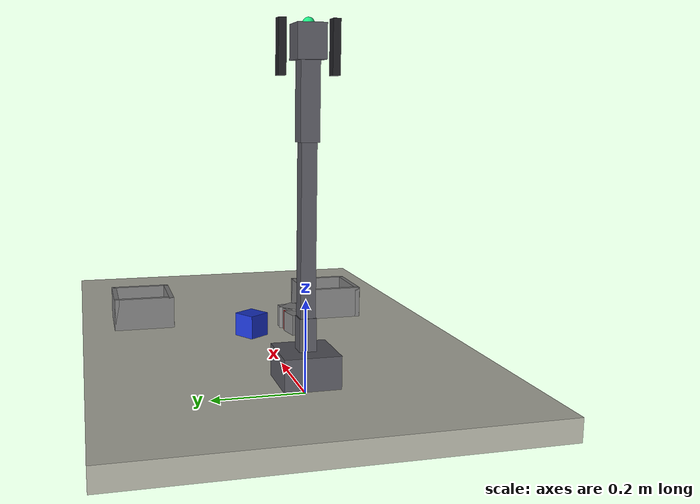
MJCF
<mujoco model="Autonomous reference tabletop arm scene_task_req_a_tabletop_robot_arm_that_sorts_red_and_blue_blo_edge_case_002">
  <compiler angle="radian" coordinate="local" />
  <option timestep="0.002" gravity="0 0 -9.81" />
  <!-- scene_set_id=scenes_task_req_a_tabletop_robot_arm_that_sorts_red_and_blue_blo_edge_case scene_id=scene_task_req_a_tabletop_robot_arm_that_sorts_red_and_blue_blo_edge_case_002 -->
  <default>
    <joint damping="0.8" armature="0.01" />
    <geom friction="1 0.1 0.01" />
  </default>
  <asset>
    <material name="mat_red" rgba="0.8 0.1 0.1 1" />
    <material name="mat_blue" rgba="0.1 0.2 0.8 1" />
    <material name="mat_gray" rgba="0.5 0.5 0.5 1" />
    <material name="mat_link" rgba="0.35 0.35 0.38 1" />
  </asset>
  <worldbody>
    <light name="key" pos="0 0 2" dir="0 0 -1" />
    <geom name="table" type="box" size="0.7 0.45 0.025" pos="0.4 0 0" rgba="0.7 0.7 0.65 1" />
    <body name="base_link" pos="0.0 0.0 0.025">
      <geom name="base_link_geom" type="box" size="0.06 0.06 0.035" pos="0 0 0.035" mass="0.45" material="mat_link" />
      <body name="upper_link" pos="0.0 0.0 0.07">
        <joint name="base_yaw" type="hinge" axis="0.0 0.0 1.0" pos="0 0 0" limited="true" range="-3.14 3.14" />
        <geom name="upper_link_geom" type="box" size="0.018 0.018 0.035" pos="0 0 0.035" mass="0.22" material="mat_link" />
        <body name="forearm_link" pos="0.0 0.0 0.07">
          <joint name="shoulder_pitch" type="hinge" axis="0.0 1.0 0.0" pos="0 0 0" limited="true" range="-1.57 1.57" />
          <geom name="forearm_link_geom" type="box" size="0.016 0.016 0.1785" pos="0 0 0.1785" mass="0.18" material="mat_link" />
          <body name="wrist_link" pos="0.0 0.0 0.357">
            <joint name="elbow_pitch" type="hinge" axis="0.0 1.0 0.0" pos="0 0 0" limited="true" range="-1.57 1.57" />
            <geom name="wrist_link_geom" type="box" size="0.02 0.02 0.08" pos="0 0 0.08" mass="0.035" material="mat_link" />
            <camera name="wrist_rgbd_camera" pos="0.03 0.0 0.04" xyaxes="0 -1 0 0 0 1" mode="fixed" user="0.0 0.0 0.0" />
            <body name="gripper_link" pos="0.0 0.0 0.16">
              <geom name="gripper_link_geom" type="box" size="0.03 0.03 0.035" pos="0 0 0.035" mass="0.04" material="mat_link" />
              <site name="ee_site" pos="0 0 0.07" size="0.012" rgba="0.1 0.9 0.5 1" />
              <site name="grasp_site" pos="0 0 0.015" size="0.01" rgba="1 0.7 0.1 1" />
              <body name="left_gripper_finger" pos="0 0.055 0.07">
                <joint name="left_gripper_slide" type="slide" axis="0 -1 0" limited="true" range="0 0.04" damping="2.0" />
                <geom name="left_gripper_pad" type="box" size="0.012 0.008 0.055" pos="0 0 -0.045" mass="0.025" rgba="0.12 0.12 0.14 1" friction="1.5 0.1 0.01" />
              </body>
              <body name="right_gripper_finger" pos="0 -0.055 0.07">
                <joint name="right_gripper_slide" type="slide" axis="0 1 0" limited="true" range="0 0.04" damping="2.0" />
                <geom name="right_gripper_pad" type="box" size="0.012 0.008 0.055" pos="0 0 -0.045" mass="0.025" rgba="0.12 0.12 0.14 1" friction="1.5 0.1 0.01" />
              </body>
            </body>
          </body>
        </body>
      </body>
    </body>
    <body name="obj_red_block" pos="0.3984 -0.085 0.0511" euler="0 0 -0.4213">
      <freejoint name="free_red_block" />
      <geom name="red_block" type="box" size="0.0251 0.0251 0.0251" mass="0.0405" friction="1.135 0.1 0.01" material="mat_red" />
    </body>
    <body name="obj_blue_block" pos="0.36 0.0372 0.0544" euler="0 0 0.5907">
      <freejoint name="free_blue_block" />
      <geom name="blue_block" type="box" size="0.0284 0.0284 0.0284" mass="0.0481" friction="0.917 0.1 0.01" material="mat_blue" />
    </body>
    <geom name="red_bin" type="box" size="0.07 0.07 0.004" pos="0.55 -0.2116 0.029" material="mat_gray" />
    <geom name="red_bin_wall_px" type="box" size="0.006 0.07600000000000001 0.04" pos="0.62 -0.2116 0.065" material="mat_gray" />
    <geom name="red_bin_wall_nx" type="box" size="0.006 0.07600000000000001 0.04" pos="0.48 -0.2116 0.065" material="mat_gray" />
    <geom name="red_bin_wall_py" type="box" size="0.07600000000000001 0.006 0.04" pos="0.55 -0.1416 0.065" material="mat_gray" />
    <geom name="red_bin_wall_ny" type="box" size="0.07600000000000001 0.006 0.04" pos="0.55 -0.2816 0.065" material="mat_gray" />
    <geom name="blue_bin" type="box" size="0.07 0.07 0.004" pos="0.55 0.2937 0.029" material="mat_gray" />
    <geom name="blue_bin_wall_px" type="box" size="0.006 0.07600000000000001 0.04" pos="0.62 0.2937 0.065" material="mat_gray" />
    <geom name="blue_bin_wall_nx" type="box" size="0.006 0.07600000000000001 0.04" pos="0.48 0.2937 0.065" material="mat_gray" />
    <geom name="blue_bin_wall_py" type="box" size="0.07600000000000001 0.006 0.04" pos="0.55 0.3637 0.065" material="mat_gray" />
    <geom name="blue_bin_wall_ny" type="box" size="0.07600000000000001 0.006 0.04" pos="0.55 0.2237 0.065" material="mat_gray" />
    <body name="obj_distractor_2_0" pos="0.4097 -0.085 0.0532" euler="0 0 0.7803">
      <freejoint name="free_distractor_2_0" />
      <geom name="distractor_2_0" type="box" size="0.0272 0.0272 0.0272" mass="0.0403" friction="0.88 0.1 0.01" material="mat_gray" />
    </body>
    <body name="obj_distractor_2_1" pos="0.36 -0.0813 0.0513" euler="0 0 -1.3722">
      <freejoint name="free_distractor_2_1" />
      <geom name="distractor_2_1" type="box" size="0.0253 0.0253 0.0253" mass="0.0585" friction="1.198 0.1 0.01" material="mat_gray" />
    </body>
    <body name="obj_distractor_2_2" pos="0.4124 -0.0793 0.053" euler="0 0 1.7675">
      <freejoint name="free_distractor_2_2" />
      <geom name="distractor_2_2" type="box" size="0.027 0.027 0.027" mass="0.0614" friction="1.021 0.1 0.01" material="mat_gray" />
    </body>
  </worldbody>
  <actuator>
    <motor name="base_yaw_motor" joint="base_yaw" gear="1" forcerange="-12.0 12.0" />
    <motor name="shoulder_pitch_motor" joint="shoulder_pitch" gear="1" forcerange="-12.0 12.0" />
    <motor name="elbow_pitch_motor" joint="elbow_pitch" gear="1" forcerange="-12.0 12.0" />
    <motor name="left_gripper_slide_motor" joint="left_gripper_slide" gear="1" forcerange="-25 25" />
    <motor name="right_gripper_slide_motor" joint="right_gripper_slide" gear="1" forcerange="-25 25" />
  </actuator>
  <sensor>
    <framepos name="wrist_rgbd_camera_pose" objtype="camera" objname="wrist_rgbd_camera" />
    <framequat name="wrist_rgbd_camera_orientation" objtype="camera" objname="wrist_rgbd_camera" />
  </sensor>
</mujoco>
